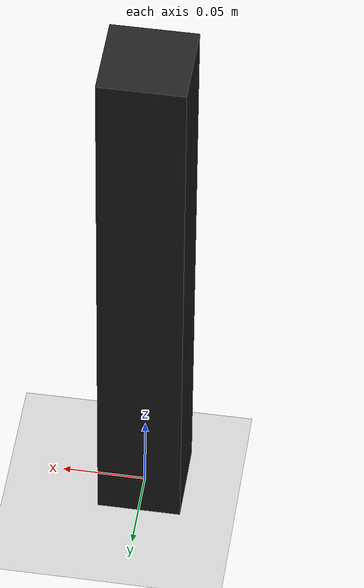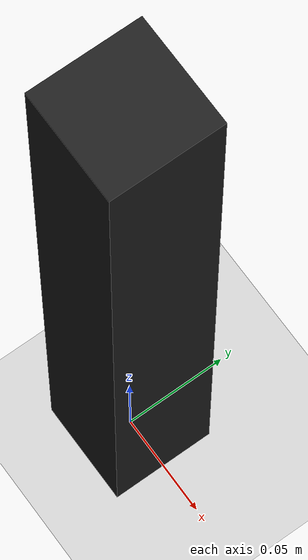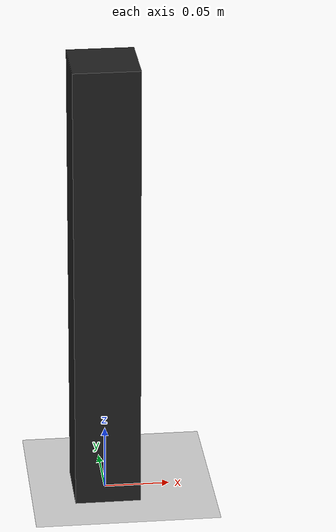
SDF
<?xml version="1.0" ?>

<sdf version="1.6">
  <world name="default">

    <include>
      <uri>model://sun</uri>
    </include>
    <include>
      <uri>model://ground_plane</uri>
    </include>

<model name='unit_box'>
      <pose frame=''>0.0 0.0 0.175 0 0 0</pose>
      <static>1</static>
      <link name='link'>
        <inertial>
          <mass>1</mass>
          <inertia>
            <ixx>0.166667</ixx>
            <ixy>0</ixy>
            <ixz>0</ixz>
            <iyy>0.166667</iyy>
            <iyz>0</iyz>
            <izz>0.166667</izz>
          </inertia>
        </inertial>
        <collision name='collision'>
          <geometry>
            <box>
              <size>0.05 0.05 0.35</size>
            </box>
          </geometry>
          <max_contacts>10</max_contacts>
          <surface>
            <contact>
              <ode/>
            </contact>
            <bounce/>
            <friction>
              <torsional>
                <ode/>
              </torsional>
              <ode/>
            </friction>
          </surface>
        </collision>
        <visual name='visual'>
          <geometry>
            <box>
              <size>0.05 0.05 0.35</size>
            </box>
          </geometry>
          <material>
            <script>
              <name>Gazebo/Black</name>
              <uri>file://media/materials/scripts/gazebo.material</uri>
            </script>
          </material>
        </visual>
        <self_collide>0</self_collide>
        <enable_wind>0</enable_wind>
        <kinematic>0</kinematic>
      </link>
    </model>

  </world>
</sdf>
